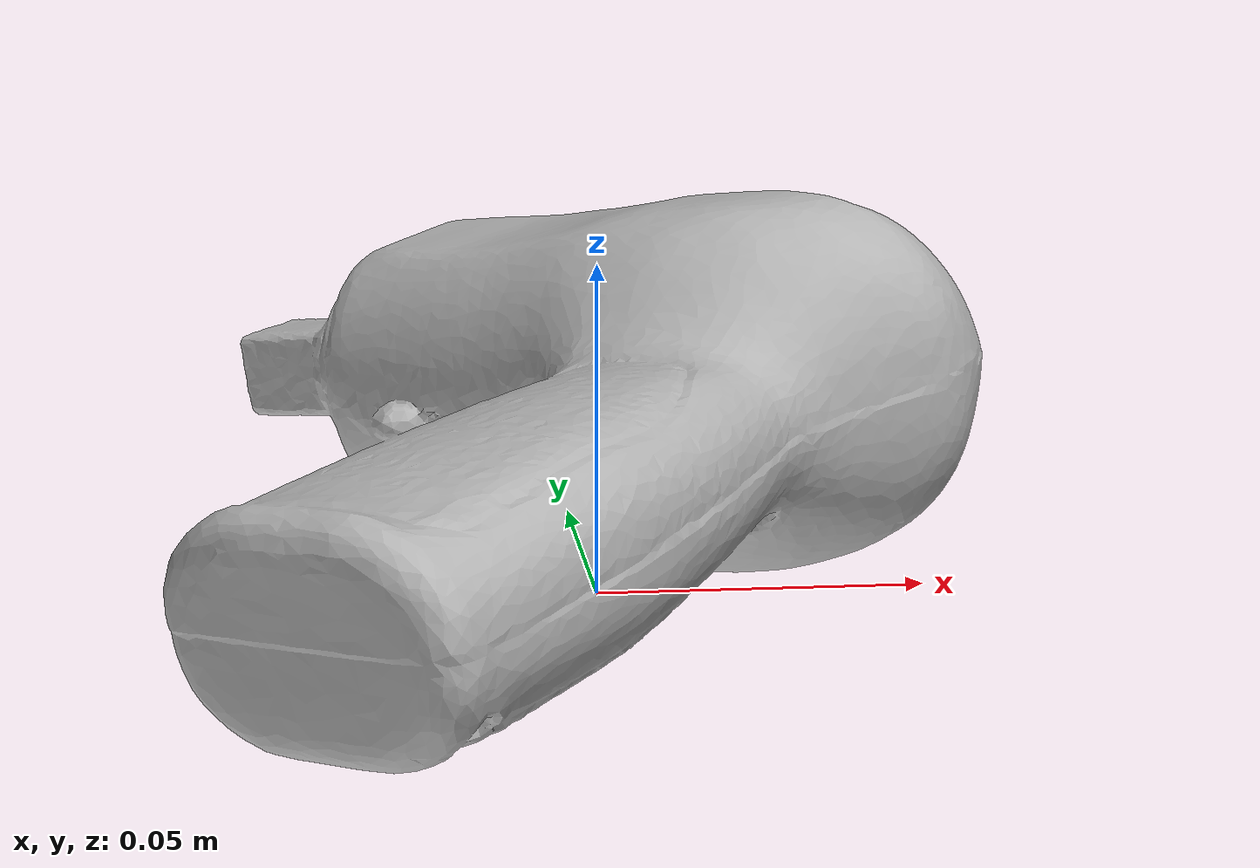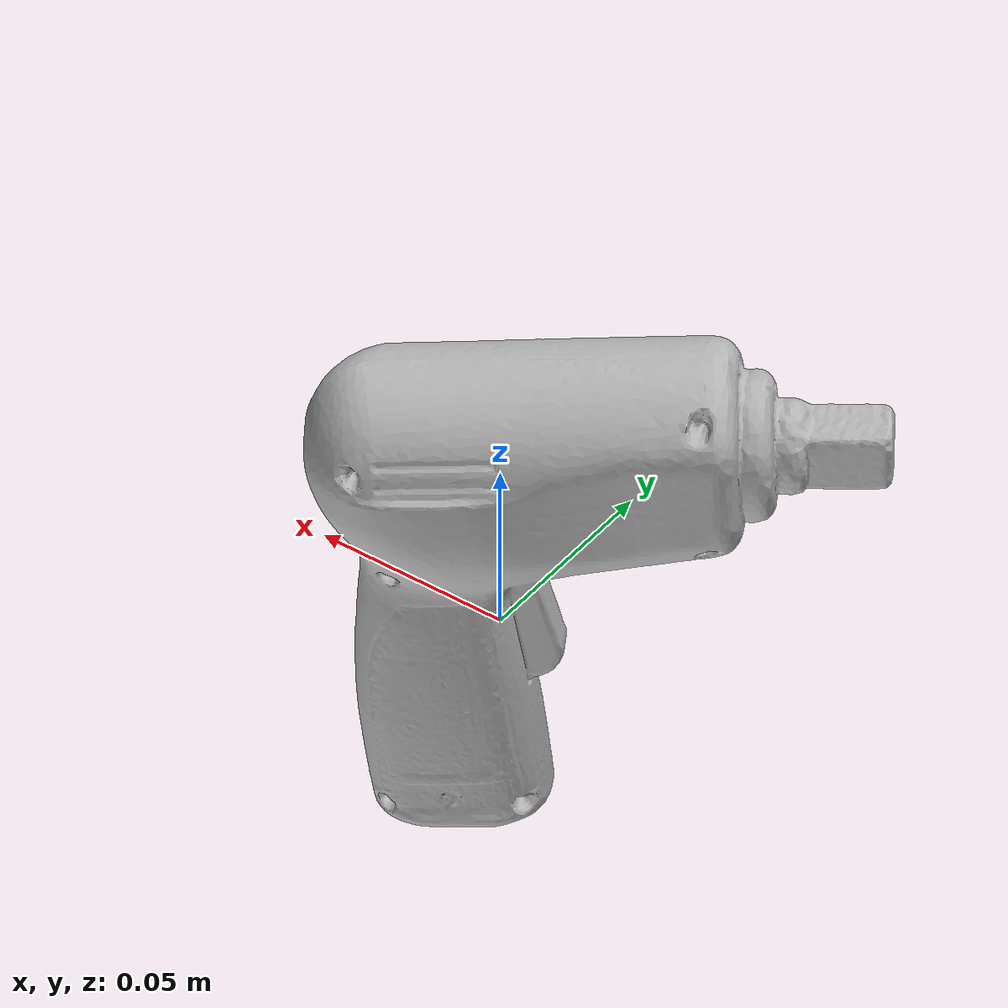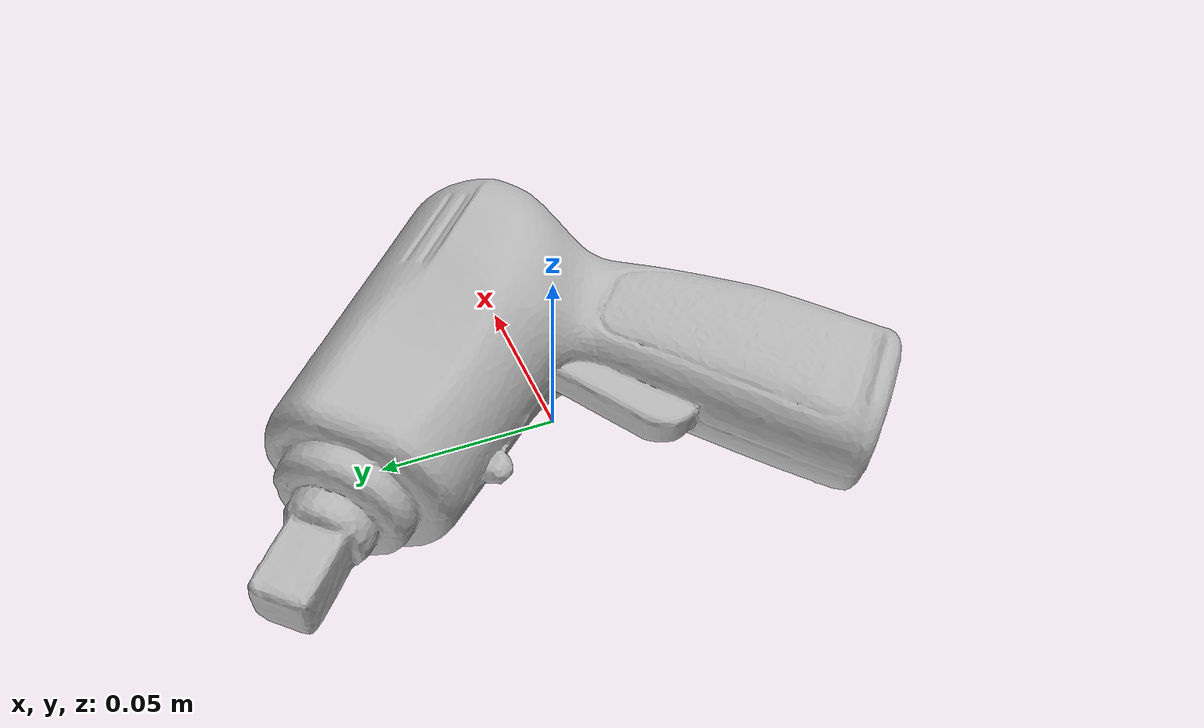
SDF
<?xml version="1.0" ?>
<sdf version='1.8'>
  <model name='ycb_072-b_toy_airplane'>
    <link name='body'>
      <inertial>
        <mass>0.46807957749</mass>
        <pose>0.000303924575 0.0065107475 0.0258086884 0 0 0</pose>
        <inertia>
          <ixx>0.00085107203116</ixx>
          <ixy>-9.05986034372e-05</ixy>
          <ixz>-3.89977774908e-05</ixz>
          <iyy>0.000359326655447</iyy>
          <iyz>-3.80632644651e-05</iyz>
          <izz>0.00106813128905</izz>
        </inertia>
      </inertial>
      <visual name='ycb_072-b_toy_airplane_visual'>
        <pose>0.049784 -0.004611 0.00041 0 0 0</pose>
        <geometry>
          <mesh>
            <uri>model://ycb_072-b_toy_airplane/meshes/textured.dae</uri>
          </mesh>
        </geometry>
      </visual>
      <collision name='ycb_072-b_toy_airplane_collision'>
        <pose>0.049784 -0.004611 0.00041 0 0 0</pose>
        <geometry>
          <mesh>
            <uri>model://ycb_072-b_toy_airplane/meshes/nontextured.stl</uri>
          </mesh>
        </geometry>
        <max_contacts>10</max_contacts>
        <surface>
          <contact>
            <ode>
              <kp>1e15</kp>
              <kd>1e13</kd>
            </ode>
          </contact>
        </surface>
      </collision>
    </link>
  </model>
</sdf>
